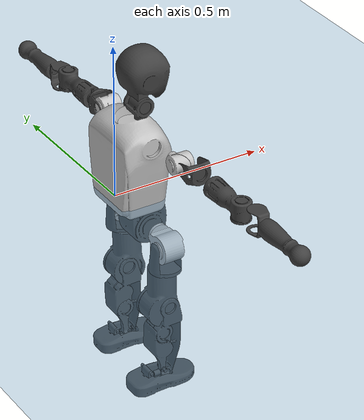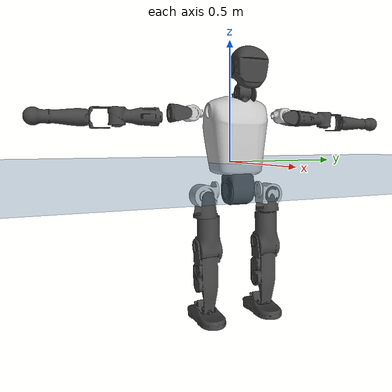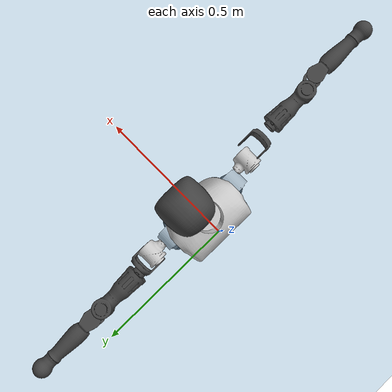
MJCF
<mujoco model="T1">
  <compiler angle="radian" assetdir="assets" balanceinertia="true" inertiafromgeom="false"/>

  <option timestep="0.005" density="1.2" viscosity="2e-05"/>

  <size nkey="1"/>

  <visual>
    <quality shadowsize="8192"/>
    <map shadowclip="0.5"/>
  </visual>

  <default>
    <default class="/">
      <joint armature="0.01" damping="0.01" frictionloss="0.1"/>
      <geom contype="0" conaffinity="0" group="1" solref="-1000 -80"/>
      <site size="0.01 0.005 0.005" group="5"/>
      <general forcelimited="true" biastype="affine" gainprm="25" biasprm="0 -25 -0.6"/>
      <default class="t1">
        <geom rgba="0.25 0.25 0.25 1"/>
        <default class="visual">
          <geom type="mesh" group="2"/>
        </default>
        <default class="collision">
          <geom group="3"/>
        </default>
        <default class="foot">
          <geom size="0.1115 0.05 0.015" type="box" condim="6" group="4" priority="1" solimp="0.015 1 0.015"/>
        </default>
        <default class="reward_collision_sphere">
          <geom group="5" rgba="1 0 0 1"/>
        </default>
      </default>
    </default>
  </default>

  <asset>
    <texture type="skybox" colorspace="auto" name="//unnamed_texture_0" builtin="gradient" rgb1="0.95 0.95 0.95" rgb2="0.95 0.95 0.95" width="100" height="600"/>
    <texture type="2d" colorspace="auto" name="texplane" builtin="checker" rgb1="0.345 0.575 0.748" rgb2="0.345 0.575 0.748" markrgb="1 1 1" width="512" height="512"/>
    <material name="MatPlane" class="/" texture="texplane" texuniform="true" texrepeat="2 2" specular="0.9"/>
    <mesh name="Trunk" class="/" file="Trunk.stl"/>
    <mesh name="H1" class="/" file="H1.stl"/>
    <mesh name="H2" class="/" file="H2.stl"/>
    <mesh name="AL1" class="/" file="AL1.stl"/>
    <mesh name="AL2" class="/" file="AL2.stl"/>
    <mesh name="AL3" class="/" file="AL3.stl"/>
    <mesh name="left_hand_link" class="/" file="left_hand_link.stl"/>
    <mesh name="AR1" class="/" file="AR1.stl"/>
    <mesh name="AR2" class="/" file="AR2.stl"/>
    <mesh name="AR3" class="/" file="AR3.stl"/>
    <mesh name="right_hand_link" class="/" file="right_hand_link.stl"/>
    <mesh name="Waist" class="/" file="Waist.stl"/>
    <mesh name="Hip_Pitch_Left" class="/" file="Hip_Pitch_Left.stl"/>
    <mesh name="Hip_Roll_Left" class="/" file="Hip_Roll_Left.stl"/>
    <mesh name="Hip_Yaw_Left" class="/" file="Hip_Yaw_Left.stl"/>
    <mesh name="Shank_Left" class="/" file="Shank_Left.stl"/>
    <mesh name="Ankle_Cross_Left" class="/" file="Ankle_Cross_Left.stl"/>
    <mesh name="left_foot_link" class="/" file="left_foot_link.stl"/>
    <mesh name="Hip_Pitch_Right" class="/" file="Hip_Pitch_Right.stl"/>
    <mesh name="Hip_Roll_Right" class="/" file="Hip_Roll_Right.stl"/>
    <mesh name="Hip_Yaw_Right" class="/" file="Hip_Yaw_Right.stl"/>
    <mesh name="Shank_Right" class="/" file="Shank_Right.stl"/>
    <mesh name="Ankle_Cross_Right" class="/" file="Ankle_Cross_Right.stl"/>
    <mesh name="right_foot_link" class="/" file="right_foot_link.stl"/>
  </asset>

  <worldbody>
    <geom name="floor" class="/" size="100 100 0.125" type="plane" group="0" material="MatPlane"/>
    <light name="toplight_shadow" class="/" pos="0 0 5" dir="0.0990148 0.0990148 -0.990148" type="directional" ambient="0.04 0.04 0.04" diffuse="0.55 0.55 0.55" specular="0.12 0.12 0.12"/>
    <light name="toplight_fill" class="/" pos="0 0 5" dir="0.0990148 0.0990148 -0.990148" type="directional" castshadow="false" ambient="0.04 0.04 0.04" diffuse="0.3 0.3 0.3" specular="0.08 0.08 0.08"/>
    <body name="trunk" childclass="t1" pos="0.00304069 -0.000269486 -0.0138254" quat="0.999998 -0.000547271 -0.00138909 -0.00154363">
      <inertial pos="0.0755703 0.00176769 0.106753" quat="0.999123 0.0179084 0.035391 0.0134109" mass="24.9014" diaginertia="0.533561 0.380166 0.046097"/>
      <joint name="//unnamed_joint_0" type="free" armature="0" damping="0" frictionloss="0"/>
      <geom name="//unnamed_geom_1" class="visual" rgba="0.76 0.76 0.76 1" mesh="Trunk"/>
      <geom name="//unnamed_geom_2" class="collision" size="0.0941349 0.125513 0.18827" pos="0.0844817 0 0.113361" type="box"/>
      <geom name="//unnamed_geom_3" class="reward_collision_sphere" size="0.14434" pos="0.0844817 0 0.0944676"/>
      <geom name="//unnamed_geom_4" class="reward_collision_sphere" size="0.018827" pos="0.0844817 0.120079 0"/>
      <geom name="//unnamed_geom_5" class="reward_collision_sphere" size="0.018827" pos="0.0844817 -0.120079 0"/>
      <geom name="//unnamed_geom_6" class="reward_collision_sphere" size="0.018827" pos="0.0844817 0.151158 0.170042"/>
      <geom name="//unnamed_geom_7" class="reward_collision_sphere" size="0.018827" pos="0.0844817 -0.151158 0.170042"/>
      <site name="imu" pos="-0.0868928 0.0763187 -0.0447091" size="0.0125513"/>
      <camera name="track" pos="0 -2.82538 0" quat="0.707107 0.707107 0 0" mode="trackcom"/>
      <camera name="ego_camera" pos="0.171779 0 0.396764" quat="-0.5 -0.5 0.5 0.5"/>
      <body name="H1" pos="0.0963969 0.0109197 0.229259" quat="0.999986 0.00198857 0.00473418 -0.00149451">
        <inertial pos="-0.00154655 0.00365368 0.0601535" quat="0.760761 -0.049094 -0.00431175 0.647159" mass="0.817308" diaginertia="0.00104468 0.00120339 9.08031e-05"/>
        <joint name="AAHead_yaw" pos="0 0 0" axis="0.00278781 -0.00365947 0.999989" range="-1.74804 1.34176" armature="0.00800802" damping="0.00331384" frictionloss="0.169305"/>
        <geom name="//unnamed_geom_8" class="visual" mesh="H1"/>
        <body name="H2" pos="-0.00250378 0.0159013 0.055381" quat="0.999999 -0.000510443 -0.00044673 0.000795841">
          <inertial pos="-0.00678814 -0.0146568 0.0811334" quat="0.989581 0.108803 -0.0853544 -0.0400831" mass="0.945733" diaginertia="0.00974487 0.0114689 0.00133154"/>
          <joint name="Head_pitch" pos="0 0 0" axis="0.0172359 -0.999432 0.0289443" range="-1.24078 0.108829" armature="0.0224165" damping="0.0646388" frictionloss="0.126812"/>
          <geom name="//unnamed_geom_9" class="visual" mesh="H2"/>
          <geom name="//unnamed_geom_10" class="collision" size="0.100411" pos="0.0140803 0 0.103914"/>
          <geom name="//unnamed_geom_11" class="reward_collision_sphere" size="0.112962" pos="0.0281606 0 0.0944676"/>
        </body>
      </body>
      <body name="AL1" pos="0.0941546 0.148902 0.203818" quat="0.99999 -0.00285413 -0.00180072 0.00297228">
        <inertial pos="-0.0104113 0.0536597 -0.0160432" quat="0.488239 0.525332 -0.470221 0.514336" mass="1.1068" diaginertia="0.00790386 0.00716049 0.000190992"/>
        <joint name="Left_Shoulder_Pitch" pos="0 0 0" axis="-0.00356509 0.999318 -0.0367652" stiffness="0.0738862" range="-2.99828 1.46105" armature="0.00886605" damping="0.0195453" frictionloss="0.128422"/>
        <geom name="//unnamed_geom_12" class="visual" rgba="0.76 0.76 0.76 1" mesh="AL1"/>
        <body name="AL2" pos="-0.00354333 0.0507949 -0.00691236" quat="0.999962 -0.00245388 0.00501375 0.00671324">
          <inertial pos="-0.00387717 0.0557003 0.0134458" quat="0.490342 0.530695 -0.473591 0.503626" mass="0.195707" diaginertia="0.00185078 0.00128419 0.000113531"/>
          <joint name="Left_Shoulder_Roll" pos="0 0 0" axis="-0.996083 0.0687628 -0.0555927" stiffness="0.0521215" range="-1.3421 1.70896" armature="0.00623494" damping="0.0909199" frictionloss="0.177495"/>
          <geom name="//unnamed_geom_13" class="visual" mesh="AL2"/>
          <body name="AL3" pos="-0.00846925 0.0699601 -0.000287213" quat="0.99996 -0.00404304 0.00569226 -0.00565959">
            <inertial pos="-0.00402681 0.117224 -0.00145548" quat="0.682588 0.727972 0.0373149 -0.0523161" mass="1.60777" diaginertia="0.0593678 0.055436 0.000419853"/>
            <joint name="Left_Elbow_Pitch" pos="0 0 0" axis="-0.00184607 -0.999958 0.00903158" range="-2.08048 2.22304" armature="0.0111011" damping="0" frictionloss="0.113526"/>
            <geom name="//unnamed_geom_14" class="visual" mesh="AL3"/>
            <geom name="//unnamed_geom_15" class="collision" size="0.037654 0.0941349" pos="0 0.0706346 0" quat="0.707105 0.707108 0 0" type="cylinder"/>
            <geom name="//unnamed_geom_16" class="reward_collision_sphere" size="0.0451847"/>
            <body name="left_hand_link" pos="-0.000313932 0.19081 -0.0117656" quat="0.999967 0.00127585 -0.00739964 -0.00305396">
              <inertial pos="0.00507008 0.164207 0.0161986" quat="0.755344 0.654572 0.0117609 0.0291913" mass="0.786627" diaginertia="0.0482163 0.0543465 0.00022261"/>
              <joint name="Left_Elbow_Yaw" pos="0 0 0" axis="-0.034571 0.0645136 0.997318" range="-2.43465 -0.275124" armature="0.0113374" damping="0.0668041" frictionloss="0.016515"/>
              <geom name="//unnamed_geom_17" class="visual" mesh="left_hand_link"/>
              <geom name="//unnamed_geom_18" class="collision" size="0.037654 0.109824" pos="0 0.18365 0" quat="0.707105 0.707108 0 0" type="cylinder"/>
              <geom name="//unnamed_geom_19" class="reward_collision_sphere" size="0.0627566"/>
              <geom name="//unnamed_geom_20" class="reward_collision_sphere" size="0.0439296" pos="0 0.155396 0"/>
              <geom name="//unnamed_geom_21" class="reward_collision_sphere" size="0.0439296" pos="0 0.303729 0"/>
            </body>
          </body>
        </body>
      </body>
      <body name="AR1" pos="0.0957112 -0.162827 0.203809" quat="0.999996 0.000419997 0.00238097 0.0016365">
        <inertial pos="-0.0039362 -0.0572585 -0.00434201" quat="0.493077 0.507756 -0.506918 0.49203" mass="0.965744" diaginertia="0.00767556 0.00827486 0.000238792"/>
        <joint name="Right_Shoulder_Pitch" pos="0 0 0" axis="0.0292452 -0.998668 -0.0425162" range="-1.5501 3.40646" armature="0.0141887" damping="0" frictionloss="0.128681"/>
        <geom name="//unnamed_geom_22" class="visual" rgba="0.76 0.76 0.76 1" mesh="AR1"/>
        <body name="AR2" pos="0.0160324 -0.0798641 -0.00162044" quat="0.999987 0.00335388 0.000259298 -0.00378666">
          <inertial pos="0.0164002 -0.0624263 0.0128433" quat="0.464401 0.498004 -0.526085 0.509469" mass="0.264589" diaginertia="0.00236714 0.00211673 0.000128858"/>
          <joint name="Right_Shoulder_Roll" pos="0 0 0" axis="-0.99972 -0.0217022 -0.00941395" range="-1.94545 1.89518" armature="0.0112592" damping="0" frictionloss="0.224442"/>
          <geom name="//unnamed_geom_23" class="visual" mesh="AR2"/>
          <body name="AR3" pos="0.0103987 -0.102706 -0.0152891" quat="0.999998 -0.00173361 -0.000700742 0.00104276">
            <inertial pos="-7.00972e-05 -0.113558 -0.000416438" quat="0.693568 0.714943 0.0762713 0.0447576" mass="2.25706" diaginertia="0.0797959 0.0608164 0.000501203"/>
            <joint name="Right_Elbow_Pitch" pos="0 0 0" axis="-4.06909e-05 1 -7.04453e-05" range="-2.25728 2.29166" armature="0.0158803" damping="0" frictionloss="0.0220608"/>
            <geom name="//unnamed_geom_24" class="visual" mesh="AR3"/>
            <geom name="//unnamed_geom_25" class="collision" size="0.037654 0.0941349" pos="0 -0.0706346 0" quat="0.707105 0.707108 0 0" type="cylinder"/>
            <geom name="//unnamed_geom_26" class="reward_collision_sphere" size="0.0451847"/>
            <body name="right_hand_link" pos="0.0151986 -0.202428 -0.00756281" quat="0.999986 -0.00436396 -0.00119826 -0.00255488">
              <inertial pos="-0.00551377 -0.154344 -0.0154253" quat="0.700716 0.709201 0.00651596 -0.0773812" mass="0.731802" diaginertia="0.0628779 0.0540885 0.000196493"/>
              <joint name="Right_Elbow_Yaw" pos="0 0 0" axis="-0.0145143 0.015029 0.999782" stiffness="0.00741336" range="0.275636 2.31793" armature="0.000933004" damping="0.0130345" frictionloss="0.127922"/>
              <geom name="//unnamed_geom_27" class="visual" mesh="right_hand_link"/>
              <geom name="//unnamed_geom_28" class="collision" size="0.037654 0.109824" pos="0 -0.18365 0" quat="0.707105 0.707108 0 0" type="cylinder"/>
              <geom name="//unnamed_geom_29" class="reward_collision_sphere" size="0.0627566"/>
              <geom name="//unnamed_geom_30" class="reward_collision_sphere" size="0.0439296" pos="0 -0.155396 0"/>
              <geom name="//unnamed_geom_31" class="reward_collision_sphere" size="0.0439296" pos="0 -0.303729 0"/>
            </body>
          </body>
        </body>
      </body>
      <body name="Waist" pos="0.0876707 -0.00804535 -0.0954107" quat="0.999999 -0.000370749 -0.000672969 -0.00133061">
        <inertial pos="-0.0130657 -0.000686938 0.00781334" quat="0.980715 -0.0269413 -0.190554 -0.034085" mass="5.08899" diaginertia="0.0351583 0.0421482 0.00391012"/>
        <joint name="Waist" pos="0 0 0" axis="0.0104866 -0.0362559 0.999288" stiffness="0.0121197" range="-1.92141 1.38572" armature="0.0211281" damping="0" frictionloss="0.151786"/>
        <geom name="//unnamed_geom_32" class="visual" mesh="Waist"/>
        <body name="Hip_Pitch_Left" pos="0.0159931 0.134584 -0.00103067" quat="0.999966 -0.00328197 -0.0062767 -0.00432929">
          <inertial pos="0.0120815 -0.027504 -0.0167701" quat="0.974282 0.224752 0.0144816 0.00716167" mass="2.488" diaginertia="0.0111849 0.0073036 0.00106515"/>
          <joint name="Left_Hip_Pitch" pos="0 0 0" axis="-0.0225656 0.999572 0.0186177" range="-1.79561 1.33147" armature="0.0127764" damping="0" frictionloss="0.127708"/>
          <geom name="//unnamed_geom_33" class="visual" rgba="0.76 0.76 0.76 1" mesh="Hip_Pitch_Left"/>
          <body name="Hip_Roll_Left" pos="-0.0106452 -0.00184883 -0.0112446" quat="0.999971 -0.00131721 -0.0073689 -0.00129152">
            <inertial pos="0.00209403 0.00197506 -0.043589" quat="0.713172 -0.00952826 -0.00145206 0.700923" mass="0.738055" diaginertia="0.00974915 0.00988529 0.000446277"/>
            <joint name="Left_Hip_Roll" pos="0 0 0" axis="-0.99999 -0.0039459 -0.00207196" stiffness="0.0566673" range="-1.70552 0.350205" armature="0.0124882" damping="0" frictionloss="0.0385165"/>
            <geom name="//unnamed_geom_34" class="visual" mesh="Hip_Roll_Left"/>
            <geom name="//unnamed_geom_35" class="reward_collision_sphere" size="0.0690323"/>
            <body name="Hip_Yaw_Left" pos="0.00653423 -0.0104118 -0.0820738" quat="0.999983 0.00583527 0.00010026 0.000346591">
              <inertial pos="-0.011068 0.000859686 -0.0840548" quat="0.735465 -0.0344817 0.0342947 0.675815" mass="4.82716" diaginertia="0.133976 0.174006 0.00169823"/>
              <joint name="Left_Hip_Yaw" pos="0 0 0" axis="0.000577274 0.076252 -0.997088" range="-1.05889 0.913081" armature="0.0122003" damping="0.0422026" frictionloss="0.121822"/>
              <geom name="//unnamed_geom_36" class="visual" mesh="Hip_Yaw_Left"/>
              <geom name="//unnamed_geom_37" class="collision" size="0.0627566 0.100411" type="cylinder"/>
              <body name="Shank_Left" pos="-0.0207805 -0.00256578 -0.121299" quat="0.999986 -0.00435717 -0.0021766 -0.00224804">
                <inertial pos="-0.00584037 -0.00771219 -0.117299" quat="0.998833 0.0434305 0.0052891 0.0204584" mass="3.24738" diaginertia="0.232094 0.176396 0.00145313"/>
                <joint name="Left_Knee_Pitch" pos="0 0 0" axis="-0.00645956 0.999971 0.00409459" stiffness="0.00989178" range="-0.173211 2.32906" armature="0.00750785" damping="0.0267115" frictionloss="0.0325698"/>
                <geom name="//unnamed_geom_38" class="visual" mesh="Shank_Left"/>
                <geom name="//unnamed_geom_39" class="collision" size="0.0627566 0.0941349" pos="0 0 -0.113361" type="cylinder"/>
                <geom name="//unnamed_geom_40" class="reward_collision_sphere" size="0.0815836"/>
                <body name="Ankle_Cross_Left" pos="0.00953737 -0.00459622 -0.266409" quat="0.999983 0.00410135 0.00236395 -0.00330001">
                  <inertial pos="-0.000337851 -0.0103585 0.010077" quat="0.427606 0.541694 0.542072 0.479457" mass="0.108671" diaginertia="0.000104919 0.000134184 7.82995e-06"/>
                  <joint name="Left_Ankle_Pitch" pos="0 0 0" axis="-0.000771108 0.998567 0.0535116" stiffness="0.0224854" range="-0.513645 0.125199" armature="0.0190296" damping="0" frictionloss="0.0301759"/>
                  <geom name="//unnamed_geom_41" class="visual" mesh="Ankle_Cross_Left"/>
                  <body name="left_foot_link" pos="-0.0153108 -0.00299264 0.00454292" quat="0.999992 0.00150957 0.0012777 -0.00361558">
                    <inertial pos="0.00751183 0.0162152 -0.0148817" quat="-0.00957939 0.614597 0.000883953 0.788783" mass="1.52902" diaginertia="0.0126582 0.0133578 0.00149272"/>
                    <joint name="Left_Ankle_Roll" pos="0 0 0" axis="-0.99923 0.00161514 -0.0391975" range="-0.205116 0.619959" armature="0.012824" damping="0.0522311" frictionloss="0.097378"/>
                    <geom name="//unnamed_geom_42" class="visual" mesh="left_foot_link"/>
                    <geom name="left_foot" class="foot" size="0.100901 0.0659923 0.0119008" pos="0.0140803 0 -0.0141701"/>
                    <geom name="//unnamed_geom_44" class="reward_collision_sphere" size="0.0652669" pos="0.0140803 0 -0.0141701"/>
                    <geom name="//unnamed_geom_45" class="reward_collision_sphere" size="0.037654" pos="0.133763 -0.0324919 -0.0141701"/>
                    <geom name="//unnamed_geom_46" class="reward_collision_sphere" size="0.037654" pos="-0.0985619 -0.0324919 -0.0141701"/>
                    <site name="left_foot" class="foot" pos="0.0140803 0 -0.0141701" size="0.0125513"/>
                  </body>
                </body>
              </body>
            </body>
          </body>
        </body>
        <body name="Hip_Pitch_Right" pos="-0.00157924 -0.149191 0.00231" quat="0.999985 0.00352688 -0.00406524 0.00118138">
          <inertial pos="0.000459212 0.00306831 -0.033216" quat="0.954681 -0.29758 -0.00262624 0.00488474" mass="1.83207" diaginertia="0.00913363 0.00751479 0.000708793"/>
          <joint name="Right_Hip_Pitch" pos="0 0 0" axis="-0.0669779 -0.997551 0.0201587" stiffness="0.0507299" range="-1.52878 1.79551" armature="0.00419293" damping="0.0386132" frictionloss="0.0570552"/>
          <geom name="//unnamed_geom_47" class="visual" rgba="0.76 0.76 0.76 1" mesh="Hip_Pitch_Right"/>
          <body name="Hip_Roll_Right" pos="0.000739883 0.0101835 -0.0265123" quat="0.999961 0.00312867 0.00829647 -0.000427362">
            <inertial pos="-0.0157869 -0.00810059 -0.0383214" quat="0.680201 -0.0372066 -0.0573846 0.729828" mass="0.883929" diaginertia="0.0130029 0.00909201 0.00045009"/>
            <joint name="Right_Hip_Roll" pos="0 0 0" axis="-0.999967 -0.00565065 0.00590775" range="-0.217652 1.29219" armature="0.0104679" damping="0.00531659" frictionloss="0.123718"/>
            <geom name="//unnamed_geom_48" class="visual" mesh="Hip_Roll_Right"/>
            <geom name="//unnamed_geom_49" class="reward_collision_sphere" size="0.0690323"/>
            <body name="Hip_Yaw_Right" pos="-0.00534135 0.0134763 -0.0753764" quat="0.999969 0.000383046 -0.00273073 0.00734312">
              <inertial pos="-0.0215797 0.00538152 -0.092313" quat="0.68037 -0.0126074 -0.0680965 0.729589" mass="3.09258" diaginertia="0.09247 0.0892986 0.00137426"/>
              <joint name="Right_Hip_Yaw" pos="0 0 0" axis="-0.0169124 0.0375951 -0.99915" stiffness="0.000991853" range="-0.98447 1.35126" armature="0.011969" damping="0.0173754" frictionloss="0.224569"/>
              <geom name="//unnamed_geom_50" class="visual" mesh="Hip_Yaw_Right"/>
              <geom name="//unnamed_geom_51" class="collision" size="0.0627566 0.100411" type="cylinder"/>
              <body name="Shank_Right" pos="-0.00331634 -0.0124444 -0.117254" quat="0.99997 0.00480195 -0.00485757 -0.00373048">
                <inertial pos="-0.0234625 -0.011067 -0.110697" quat="0.99942 0.00059174 -0.012717 -0.0315884" mass="2.94769" diaginertia="0.195991 0.249003 0.0018422"/>
                <joint name="Right_Knee_Pitch" pos="0 0 0" axis="-0.00896192 -0.999555 0.0284593" range="-2.1966 0.00765947" armature="0.0100518" damping="0" frictionloss="0.0665132"/>
                <geom name="//unnamed_geom_52" class="visual" mesh="Shank_Right"/>
                <geom name="//unnamed_geom_53" class="collision" size="0.0627566 0.0941349" pos="0 0 -0.113361" type="cylinder"/>
                <geom name="//unnamed_geom_54" class="reward_collision_sphere" size="0.0815836"/>
                <body name="Ankle_Cross_Right" pos="-0.00136197 0.000793271 -0.251262" quat="0.999971 -0.00251524 0.0047981 0.00537882">
                  <inertial pos="-0.00613028 8.69802e-05 -0.00756356" quat="0.40846 0.565626 0.573949 0.428732" mass="0.199536" diaginertia="0.000187725 0.000167701 1.04781e-05"/>
                  <joint name="Right_Ankle_Pitch" pos="0 0 0" axis="-0.011093 -0.996012 -0.0885233" range="-0.357498 1.12588" armature="0.00384652" damping="0.0694313" frictionloss="0.23567"/>
                  <geom name="//unnamed_geom_55" class="visual" mesh="Ankle_Cross_Right"/>
                  <body name="right_foot_link" pos="-0.0127766 -9.50402e-05 -0.0193549" quat="0.999986 0.0043738 -0.00307452 -6.07815e-05">
                    <inertial pos="-0.00738005 0.000587136 0.00626564" quat="0.0175124 0.634733 0.00412502 0.772522" mass="0.984384" diaginertia="0.0153161 0.0112513 0.00164039"/>
                    <joint name="Right_Ankle_Roll" pos="0 0 0" axis="-0.997584 0.02538 0.0646699" stiffness="0.000634042" range="-0.79502 0.239897" armature="0.0215873" damping="0.00178285" frictionloss="0.100185"/>
                    <geom name="//unnamed_geom_56" class="visual" mesh="right_foot_link"/>
                    <geom name="right_foot" class="foot" size="0.229151 0.0455104 0.0194213" pos="0.0140803 0 -0.0141701"/>
                    <geom name="//unnamed_geom_58" class="reward_collision_sphere" size="0.0502053"/>
                    <geom name="//unnamed_geom_59" class="reward_collision_sphere" size="0.037654" pos="0.0140803 0 -0.0141701"/>
                    <geom name="//unnamed_geom_60" class="reward_collision_sphere" size="0.037654" pos="0.133763 0.0324919 -0.0141701"/>
                    <geom name="//unnamed_geom_61" class="reward_collision_sphere" size="0.037654" pos="-0.0985619 0.0324919 -0.0141701"/>
                    <site name="right_foot" class="foot" pos="0.0140803 0 -0.0141701" size="0.0125513"/>
                  </body>
                </body>
              </body>
            </body>
          </body>
        </body>
      </body>
    </body>
  </worldbody>

  <contact>
    <pair class="/" geom1="floor" geom2="left_foot" name="//unnamed_contact_0"/>
    <pair class="/" geom1="floor" geom2="right_foot" name="//unnamed_contact_1"/>
  </contact>

  <actuator>
    <general name="AAHead_yaw" class="/" joint="AAHead_yaw" forcerange="-12.0662 12.0662" gainprm="20.6986" biasprm="0 -20.6986 -0.595565"/>
    <general name="Head_pitch" class="/" joint="Head_pitch" forcerange="-7.23578 7.23578" gainprm="20.6986" biasprm="0 -20.6986 -0.595565"/>
    <general name="Left_Shoulder_Pitch" class="/" joint="Left_Shoulder_Pitch" forcerange="-23.7289 23.7289" gainprm="20.6986" biasprm="0 -20.6986 -0.595565"/>
    <general name="Left_Shoulder_Roll" class="/" joint="Left_Shoulder_Roll" forcerange="-23.805 23.805" gainprm="20.6986" biasprm="0 -20.6986 -0.595565"/>
    <general name="Left_Elbow_Pitch" class="/" joint="Left_Elbow_Pitch" forcerange="-10.3391 10.3391" gainprm="20.6986" biasprm="0 -20.6986 -0.595565"/>
    <general name="Left_Elbow_Yaw" class="/" joint="Left_Elbow_Yaw" forcerange="-27.4333 27.4333" gainprm="20.6986" biasprm="0 -20.6986 -0.595565"/>
    <general name="Right_Shoulder_Pitch" class="/" joint="Right_Shoulder_Pitch" forcerange="-22.3055 22.3055" gainprm="20.6986" biasprm="0 -20.6986 -0.595565"/>
    <general name="Right_Shoulder_Roll" class="/" joint="Right_Shoulder_Roll" forcerange="-22.1818 22.1818" gainprm="20.6986" biasprm="0 -20.6986 -0.595565"/>
    <general name="Right_Elbow_Pitch" class="/" joint="Right_Elbow_Pitch" forcerange="-28.943 28.943" gainprm="20.6986" biasprm="0 -20.6986 -0.595565"/>
    <general name="Right_Elbow_Yaw" class="/" joint="Right_Elbow_Yaw" forcerange="-9.96399 9.96399" gainprm="20.6986" biasprm="0 -20.6986 -0.595565"/>
    <general name="Waist" class="/" joint="Waist" forcerange="-24.241 24.241" gainprm="20.6986" biasprm="0 -20.6986 -0.595565"/>
    <general name="Left_Hip_Pitch" class="/" joint="Left_Hip_Pitch" forcerange="-93.5737 93.5737" gainprm="20.6986" biasprm="0 -20.6986 -0.595565"/>
    <general name="Left_Hip_Roll" class="/" joint="Left_Hip_Roll" forcerange="-29.1598 29.1598" gainprm="20.6986" biasprm="0 -20.6986 -0.595565"/>
    <general name="Left_Hip_Yaw" class="/" joint="Left_Hip_Yaw" forcerange="-26.649 26.649" gainprm="20.6986" biasprm="0 -20.6986 -0.595565"/>
    <general name="Left_Knee_Pitch" class="/" joint="Left_Knee_Pitch" forcerange="-32.5812 32.5812" gainprm="20.6986" biasprm="0 -20.6986 -0.595565"/>
    <general name="Left_Ankle_Pitch" class="/" joint="Left_Ankle_Pitch" forcerange="-19.9172 19.9172" gainprm="20.6986" biasprm="0 -20.6986 -0.595565"/>
    <general name="Left_Ankle_Roll" class="/" joint="Left_Ankle_Roll" forcerange="-19.1531 19.1531" gainprm="20.6986" biasprm="0 -20.6986 -0.595565"/>
    <general name="Right_Hip_Pitch" class="/" joint="Right_Hip_Pitch" forcerange="-21.6662 21.6662" gainprm="20.6986" biasprm="0 -20.6986 -0.595565"/>
    <general name="Right_Hip_Roll" class="/" joint="Right_Hip_Roll" forcerange="-28.5543 28.5543" gainprm="20.6986" biasprm="0 -20.6986 -0.595565"/>
    <general name="Right_Hip_Yaw" class="/" joint="Right_Hip_Yaw" forcerange="-26.7115 26.7115" gainprm="20.6986" biasprm="0 -20.6986 -0.595565"/>
    <general name="Right_Knee_Pitch" class="/" joint="Right_Knee_Pitch" forcerange="-41.8609 41.8609" gainprm="20.6986" biasprm="0 -20.6986 -0.595565"/>
    <general name="Right_Ankle_Pitch" class="/" joint="Right_Ankle_Pitch" forcerange="-34.2141 34.2141" gainprm="20.6986" biasprm="0 -20.6986 -0.595565"/>
    <general name="Right_Ankle_Roll" class="/" joint="Right_Ankle_Roll" forcerange="-30.4705 30.4705" gainprm="20.6986" biasprm="0 -20.6986 -0.595565"/>
  </actuator>

  <sensor>
    <gyro site="imu" name="imu_angular_velocity"/>
    <velocimeter site="imu" name="imu_linear_velocity"/>
    <framelinvel objtype="site" objname="left_foot" name="left_foot_global_linear_velocity"/>
    <framelinvel objtype="site" objname="right_foot" name="right_foot_global_linear_velocity"/>
  </sensor>

  <keyframe>
    <key name="home" qpos="0 0 0.6385 1 0 0 0 0 0 0 1.4 0 -0.4 0 -1.4 0 0.4 0 -0.4 0 0 0.8 -0.4 0 0.4 0 0 -0.8 0.4 0"/>
  </keyframe>
</mujoco>
